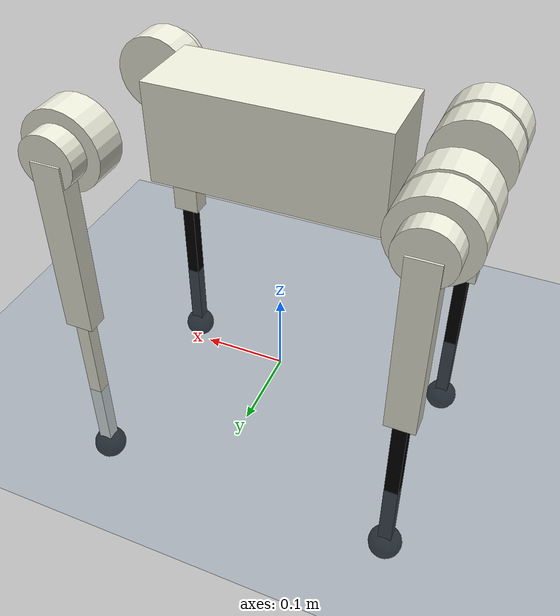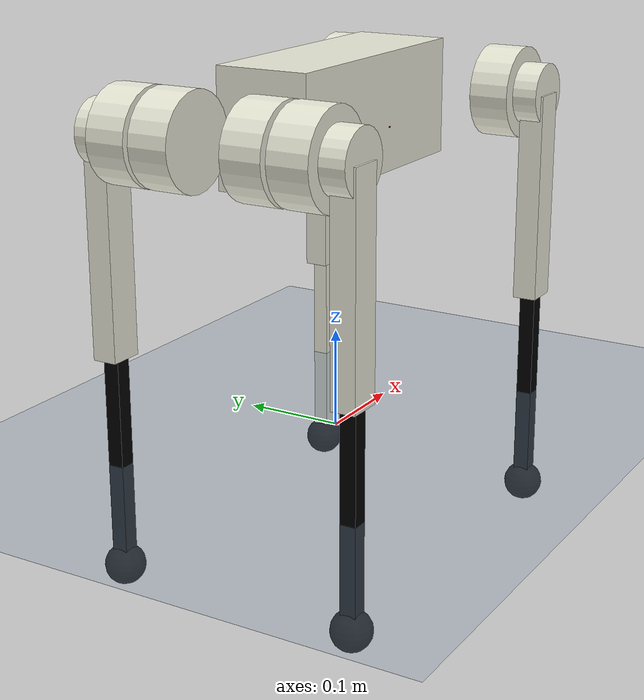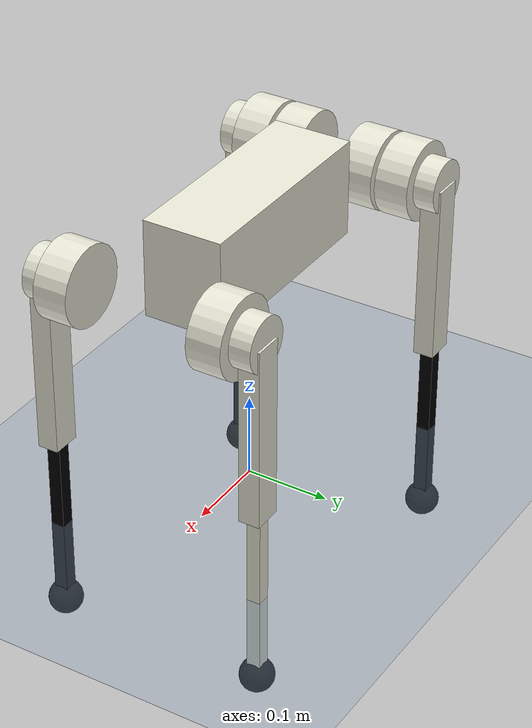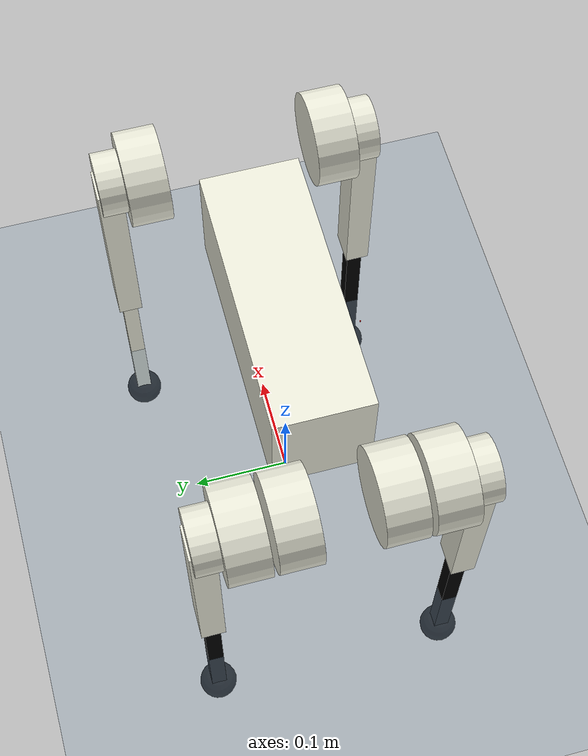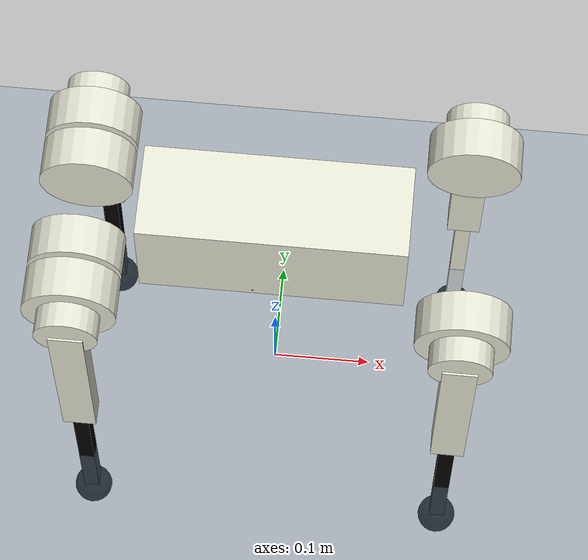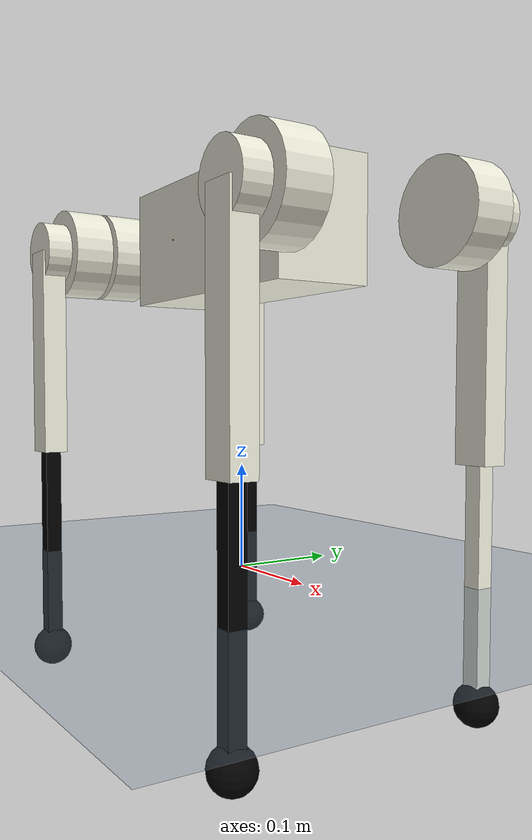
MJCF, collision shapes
<mujoco model="go1_description">
    <compiler angle="radian" meshdir="../meshes" />
    <size njmax="500" nconmax="100" />
    <option gravity='0 0 -9.81' iterations='50' solver='Newton' timestep='0.002'/>

    <default>
        <geom contype="1" conaffinity="1" friction="0.6 0.3 0.3" rgba="0.5 0.6 0.7 1" margin="0.001" group="0"/>

        <light castshadow="false" diffuse="1 1 1"/>
        <motor ctrlrange="-33.5 33.5" ctrllimited="true"/>
        <camera fovy="60"/>
        <joint damping="0.01" armature="0.01" frictionloss="0.2" />

    </default>

    <asset>
        <mesh name="trunk" file="trunk.stl" />
        <mesh name="hip" file="hip.stl" />
        <mesh name="thigh_mirror" file="thigh_mirror.stl" />
        <mesh name="calf" file="calf.stl" />
        <mesh name="thigh" file="thigh.stl" />
    </asset>

    <asset>
        <texture name="plane" type="2d" builtin="flat" rgb1="1 1 1" rgb2="1 1 1" width="512" height="512" mark="cross" markrgb="0 0 0"/>
        <material name="plane" reflectance="0.0" texture="plane" texrepeat="3 3" texuniform="true"/>
        <texture name="grid" type="2d" builtin="checker" width="512" height="512" rgb1=".1 .2 .3" rgb2=".2 .3 .4"/>
        <material name="grid" texture="grid" texrepeat="2 2" texuniform="false" reflectance=".2"/>
    </asset>

    <visual>
        <headlight diffuse="0.6 0.6 0.6" ambient="0.3 0.3 0.3" specular="0 0 0"/>
        <rgba com="0.502 1.0 0 0.5" contactforce="0.98 0.4 0.4 0.7" contactpoint="1.0 1.0 0.6 0.4"/>
        <scale com="0.2" forcewidth="0.035" contactwidth="0.10" contactheight="0.04"/>
    </visual>

    <worldbody>
        <light pos="0 0 1.5" dir="0 0 -1" directional="true"/>
        <camera name="track" mode="trackcom" pos="0 -1.3 1.6" xyaxes="1 0 0 0 0.707 0.707"/>
        <geom name="floor" type="plane" size="0 0 1" material="grid"/>

        <body name="trunk" pos="0 0 0.32">
            <inertial pos="0.0116053 0.00442221 0.000106692" quat="0.0111438 0.707126 -0.00935374 0.706938" mass="5.204" diaginertia="0.0447997 0.0366257 0.0162187" />
            <joint type="free" />
            <geom type="mesh" contype="0" conaffinity="0" group="1" rgba="0.913725 0.913725 0.847059 1" mesh="trunk" />
            <geom size="0.13 0.04675 0.057" type="box" rgba="0.913725 0.913725 0.847059 1" />
            <geom size="0.0005 0.0005 0.0005" pos="-0.01592 -0.06659 -0.00617" type="box" contype="0" conaffinity="0" group="1" rgba="0.8 0 0 0" />
            <geom size="0.0005 0.0005 0.0005" pos="-0.01592 -0.06659 -0.00617" type="box" rgba="0.8 0 0 0" />
            <site name="imu" pos="0 0 0"/>

            <body name="FR_hip" pos="0.1881 -0.04675 0">
                <inertial pos="-0.00406411 -0.0193463 4.50733e-06" quat="0.467526 0.531662 -0.466259 0.530431" mass="0.591" diaginertia="0.00131334 0.00122648 0.000728484" />
                <joint name="1_FR_hip_joint" pos="0 0 0" axis="1 0 0" limited="true" range="-0.802851 0.802851" />
                <geom quat="0 1 0 0" type="mesh" contype="0" conaffinity="0" group="1" rgba="0.913725 0.913725 0.847059 1" mesh="hip" />
                <geom size="0.046 0.02" pos="0 -0.045 0" quat="0.707107 0.707107 0 0" type="cylinder" rgba="0.913725 0.913725 0.847059 0" />
                <geom size="0.031 0.02" pos="0 -0.07 0" quat="0.707107 0.707107 0 0" type="cylinder" rgba="0.913725 0.913725 0.847059 0" />

                <body name="FR_thigh" pos="0 -0.08 0">
                    <inertial pos="-0.003468 0.018947 -0.032736" quat="0.999266 0.00067676 -0.0382978 0.000639813" mass="0.92" diaginertia="0.00542178 0.00514246 0.000998869" />
                    <joint name="1_FR_thigh_joint" pos="0 0 0" axis="0 1 0" limited="true" range="-1.0472 4.18879" />
                    <geom type="mesh" contype="0" conaffinity="0" group="1" rgba="0.913725 0.913725 0.847059 1" mesh="thigh_mirror" />
                    <geom size="0.1065 0.01225 0.017" pos="0 0 -0.1065" quat="0.707107 0 0.707107 0" type="box" rgba="0.913725 0.913725 0.847059 0" />
                    <body name="FR_calf" pos="0 0 -0.213">
                        <inertial pos="0.00455603 0.0009473 -0.147239" quat="0.762045 0.00970173 0.0180098 0.647201" mass="0.135862" diaginertia="0.00399678 0.00398122 3.99428e-05" />
                        <joint name="1_FR_calf_joint" pos="0 0 0" axis="0 1 0" limited="true" range="-2.69653 -0.916298" />
                        <geom type="mesh" contype="0" conaffinity="0" group="1" rgba="0 0 0 1" mesh="calf" />
                        <geom size="0.1065 0.008 0.008" pos="0 0 -0.1065" quat="0.707107 0 0.707107 0" type="box" rgba="0 0 0 0" />
                        <geom size="0.01" pos="0 0 -0.213" contype="0" conaffinity="0" group="1" rgba="0 0 0 1" />
                        <geom name="FR_foot" size="0.02" pos="0 0 -0.213" rgba="0 0 0 1" friction="0.7 0.02 0.01"/>
                        <site name="FR_foot_site" pos="0 0 -0.213" type="sphere" size="0.02"/>
                    </body>
                </body>
            </body>
            <body name="FL_hip" pos="0.1881 0.04675 0">
                <inertial pos="-0.00406411 0.0193463 4.50733e-06" quat="0.531662 0.467526 -0.530431 0.466259" mass="0.591" diaginertia="0.00131334 0.00122648 0.000728484" />
                <joint name="2_FL_hip_joint" pos="0 0 0" axis="1 0 0" limited="true" range="-0.802851 0.802851" />
                <geom type="mesh" contype="0" conaffinity="0" group="1" rgba="0.913725 0.913725 0.847059 1" mesh="hip" />
                <geom size="0.046 0.02" pos="0 0.045 0" quat="0.707107 0.707107 0 0" type="cylinder" rgba="0.913725 0.913725 0.847059 0" />
                <geom size="0.031 0.02" pos="0 0.07 0" quat="0.707107 0.707107 0 0" type="cylinder" rgba="0.913725 0.913725 0.847059 0" />

                <body name="FL_thigh" pos="0 0.08 0">
                    <inertial pos="-0.003468 -0.018947 -0.032736" quat="0.999266 -0.00067676 -0.0382978 -0.000639813" mass="0.92" diaginertia="0.00542178 0.00514246 0.000998869" />
                    <joint name="2_FL_thigh_joint" pos="0 0 0" axis="0 1 0" limited="true" range="-1.0472 4.18879" />
                    <geom type="mesh" contype="0" conaffinity="0" group="1" rgba="0.913725 0.913725 0.847059 1" mesh="thigh" />
                    <geom size="0.1065 0.01225 0.017" pos="0 0 -0.1065" quat="0.707107 0 0.707107 0" type="box" rgba="0.913725 0.913725 0.847059 0" />
                    <body name="FL_calf" pos="0 0 -0.213">
                        <inertial pos="0.00455603 0.0009473 -0.147239" quat="0.762045 0.00970173 0.0180098 0.647201" mass="0.1358625" diaginertia="0.00399678 0.00398122 3.99428e-05" />
                        <joint name="2_FL_calf_joint" pos="0 0 0" axis="0 1 0" limited="true" range="-2.69653 -0.916298" />
                        <geom type="mesh" contype="0" conaffinity="0" group="1" rgba="0 0 0 1" mesh="calf" />
                        <geom size="0.1065 0.008 0.008" pos="0 0 -0.1065" quat="0.707107 0 0.707107 0" type="box" rgba="0.913725 0.913725 0.847059 0" />
                        <geom size="0.01" pos="0 0 -0.213" contype="0" conaffinity="0" group="1" rgba="0 0 0 1" />
                        <geom name="FL_foot" size="0.02" pos="0 0 -0.213" rgba="0 0 0 1" friction="0.7 0.02 0.01"/>
                        <site name="FL_foot_site" pos="0 0 -0.213" type="sphere" size="0.02"/>
                    </body>
                </body>
            </body>
            <body name="RR_hip" pos="-0.1881 -0.04675 0">
                <inertial pos="0.00406411 -0.0193463 4.50733e-06" quat="0.530431 0.466259 -0.531662 0.467526" mass="0.591" diaginertia="0.00131334 0.00122648 0.000728484" />
                <joint name="3_RR_hip_joint" pos="0 0 0" axis="1 0 0" limited="true" range="-0.802851 0.802851" />
                <geom quat="0 0 0 -1" type="mesh" contype="0" conaffinity="0" group="1" rgba="0.913725 0.913725 0.847059 1" mesh="hip" />
                <geom size="0.046 0.02" quat="0.707107 0.707107 0 0" type="cylinder" rgba="0.913725 0.913725 0.847059 1" />
                <geom size="0.046 0.02" pos="0 -0.045 0" quat="0.707107 0.707107 0 0" type="cylinder" rgba="0.913725 0.913725 0.847059 0" />
                <geom size="0.031 0.02" pos="0 -0.07 0" quat="0.707107 0.707107 0 0" type="cylinder" rgba="0.913725 0.913725 0.847059 0" />

                <body name="RR_thigh" pos="0 -0.08 0">
                    <inertial pos="-0.003468 0.018947 -0.032736" quat="0.999266 0.00067676 -0.0382978 0.000639813" mass="0.92" diaginertia="0.00542178 0.00514246 0.000998869" />
                    <joint name="3_RR_thigh_joint" pos="0 0 0" axis="0 1 0" limited="true" range="-1.0472 4.18879" />
                    <geom type="mesh" contype="0" conaffinity="0" group="1" rgba="0.913725 0.913725 0.847059 1" mesh="thigh_mirror" />
                    <geom size="0.1065 0.01225 0.017" pos="0 0 -0.1065" quat="0.707107 0 0.707107 0" type="box" rgba="0.913725 0.913725 0.847059 0" />
                    <body name="RR_calf" pos="0 0 -0.213">
                        <inertial pos="0.00455603 0.0009473 -0.147239" quat="0.762045 0.00970173 0.0180098 0.647201" mass="0.1358625" diaginertia="0.00399678 0.00398122 3.99428e-05" />
                        <joint name="3_RR_calf_joint" pos="0 0 0" axis="0 1 0" limited="true" range="-2.69653 -0.916298" />
                        <geom type="mesh" contype="0" conaffinity="0" group="1" rgba="0 0 0 1" mesh="calf" />
                        <geom size="0.1065 0.008 0.008" pos="0 0 -0.1065" quat="0.707107 0 0.707107 0" type="box" rgba="0 0 0 0" />
                        <geom size="0.01" pos="0 0 -0.213" contype="0" conaffinity="0" group="1" rgba="0 0 0 1" />
                        <geom name="RR_foot" size="0.02" pos="0 0 -0.213" rgba="0 0 0 1" friction="0.7 0.02 0.01"/>
                        <site name="RR_foot_site" pos="0 0 -0.213" type="sphere" size="0.02"/>
                    </body>
                </body>
            </body>
            <body name="RL_hip" pos="-0.1881 0.04675 0">
                <inertial pos="0.00406411 0.0193463 4.50733e-06" quat="0.466259 0.530431 -0.467526 0.531662" mass="0.591" diaginertia="0.00131334 0.00122648 0.000728484" />
                <joint name="4_RL_hip_joint" pos="0 0 0" axis="1 0 0" limited="true" range="-0.802851 0.802851"  />
                <geom quat="0 0 1 0" type="mesh" contype="0" conaffinity="0" group="1" rgba="0.913725 0.913725 0.847059 1" mesh="hip" />
                <geom size="0.046 0.02" quat="0.707107 0.707107 0 0" type="cylinder" rgba="0.913725 0.913725 0.847059 1" />
                <geom size="0.046 0.02" pos="0 0.045 0" quat="0.707107 0.707107 0 0" type="cylinder" rgba="0.913725 0.913725 0.847059 0" />
                <geom size="0.031 0.02" pos="0 0.07 0" quat="0.707107 0.707107 0 0" type="cylinder" rgba="0.913725 0.913725 0.847059 0" />

                <body name="RL_thigh" pos="0 0.08 0">
                    <inertial pos="-0.003468 -0.018947 -0.032736" quat="0.999266 -0.00067676 -0.0382978 -0.000639813" mass="0.92" diaginertia="0.00542178 0.00514246 0.000998869" />
                    <joint name="4_RL_thigh_joint" pos="0 0 0" axis="0 1 0" limited="true" range="-1.0472 4.18879" />
                    <geom type="mesh" contype="0" conaffinity="0" group="1" rgba="0.913725 0.913725 0.847059 1" mesh="thigh" />
                    <geom size="0.1065 0.01225 0.017" pos="0 0 -0.1065" quat="0.707107 0 0.707107 0" type="box" rgba="0.913725 0.913725 0.847059 0" />
                    <body name="RL_calf" pos="0 0 -0.213">
                        <inertial pos="0.00455603 0.0009473 -0.147239" quat="0.762045 0.00970173 0.0180098 0.647201" mass="0.1358625" diaginertia="0.00399678 0.00398122 3.99428e-05" />
                        <joint name="4_RL_calf_joint" pos="0 0 0" axis="0 1 0" limited="true" range="-2.69653 -0.916298" />
                        <geom type="mesh" contype="0" conaffinity="0" group="1" rgba="0 0 0 1" mesh="calf" />
                        <geom size="0.1065 0.008 0.008" pos="0 0 -0.1065" quat="0.707107 0 0.707107 0" type="box" rgba="0 0 0 0" />
                        <geom size="0.01" pos="0 0 -0.213" contype="0" conaffinity="0" group="1" rgba="0 0 0 1" />
                        <geom name="RL_foot" size="0.02" pos="0 0 -0.213" rgba="0 0 0 1" friction="0.7 0.02 0.01"/>
                        <site name="RL_foot_site" pos="0 0 -0.213" type="sphere" size="0.02"/>
                    </body>
                </body>
            </body>
        </body>
    </worldbody>

    <actuator>
        <motor name="FR_hip"       ctrlrange="-23.7 23.7"   gear="1" joint="1_FR_hip_joint"/>
        <motor name="FR_thigh"     ctrlrange="-23.7 23.7"   gear="1" joint="1_FR_thigh_joint"/>
        <motor name="FR_calf"      ctrlrange="-35.55 35.55" gear="1" joint="1_FR_calf_joint"/>

        <motor name="FL_hip"       ctrlrange="-23.7 23.7"   gear="1" joint="2_FL_hip_joint"/>
        <motor name="FL_thigh"     ctrlrange="-23.7 23.7"   gear="1" joint="2_FL_thigh_joint"/>
        <motor name="FL_calf"      ctrlrange="-35.55 35.55" gear="1" joint="2_FL_calf_joint"/>

        <motor name="RR_hip"       ctrlrange="-23.7 23.7"   gear="1" joint="3_RR_hip_joint"/>
        <motor name="RR_thigh"     ctrlrange="-23.7 23.7"   gear="1" joint="3_RR_thigh_joint"/>
        <motor name="RR_calf"      ctrlrange="-35.55 35.55" gear="1" joint="3_RR_calf_joint" />

        <motor name="RL_hip"       ctrlrange="-23.7 23.7"   gear="1" joint="4_RL_hip_joint"/>
        <motor name="RL_thigh"     ctrlrange="-23.7 23.7"   gear="1" joint="4_RL_thigh_joint"/>
        <motor name="RL_calf"      ctrlrange="-35.55 35.55" gear="1" joint="4_RL_calf_joint"/>
    </actuator>

    <sensor>
        <jointpos name="FR_hip_pos"     joint="1_FR_hip_joint"/>
        <jointpos name="FR_thigh_pos"   joint="1_FR_thigh_joint"/>
        <jointpos name="FR_calf_pos"    joint="1_FR_calf_joint"/>
        <jointpos name="FL_hip_pos"     joint="2_FL_hip_joint"/>
        <jointpos name="FL_thigh_pos"   joint="2_FL_thigh_joint"/>
        <jointpos name="FL_calf_pos"    joint="2_FL_calf_joint"/>
        <jointpos name="RR_hip_pos"     joint="3_RR_hip_joint"/>
        <jointpos name="RR_thigh_pos"   joint="3_RR_thigh_joint"/>
        <jointpos name="RR_calf_pos"    joint="3_RR_calf_joint" />
        <jointpos name="RL_hip_pos"     joint="4_RL_hip_joint"/>
        <jointpos name="RL_thigh_pos"   joint="4_RL_thigh_joint"/>
        <jointpos name="RL_calf_pos"    joint="4_RL_calf_joint"/>

        <jointvel name="FR_hip_vel"     joint="1_FR_hip_joint"/>
        <jointvel name="FR_thigh_vel"   joint="1_FR_thigh_joint"/>
        <jointvel name="FR_calf_vel"    joint="1_FR_calf_joint"/>
        <jointvel name="FL_hip_vel"     joint="2_FL_hip_joint"/>
        <jointvel name="FL_thigh_vel"   joint="2_FL_thigh_joint"/>
        <jointvel name="FL_calf_vel"    joint="2_FL_calf_joint"/>
        <jointvel name="RR_hip_vel"     joint="3_RR_hip_joint"/>
        <jointvel name="RR_thigh_vel"   joint="3_RR_thigh_joint"/>
        <jointvel name="RR_calf_vel"    joint="3_RR_calf_joint" />
        <jointvel name="RL_hip_vel"     joint="4_RL_hip_joint"/>
        <jointvel name="RL_thigh_vel"   joint="4_RL_thigh_joint"/>
        <jointvel name="RL_calf_vel"    joint="4_RL_calf_joint"/>

        <accelerometer name="BodyAcc" site="imu"/>
        <gyro name="BodyGyro" site="imu"/>
        <frameangacc name="BodyAngAcc" objtype="site" objname="imu"/>

        <framepos name="BodyPos" objtype="site" objname="imu"/>
        <framequat name="BodyQuat" objtype="site" objname="imu"/>

        <framelinvel name="BodyVel" objtype="site" objname="imu" />

        <touch name="FR_foot_force_sensor" site="FR_foot_site"/>
        <touch name="FL_foot_force_sensor" site="FL_foot_site"/>
        <touch name="RR_foot_force_sensor" site="RR_foot_site"/>
        <touch name="RL_foot_force_sensor" site="RL_foot_site"/>

    </sensor>
</mujoco>
